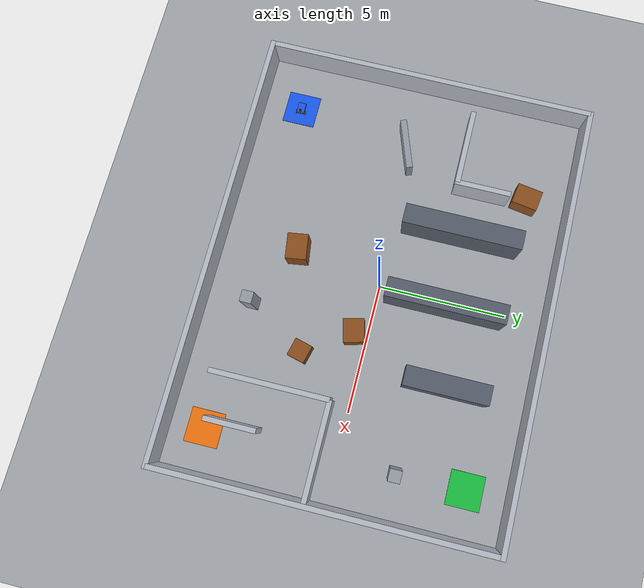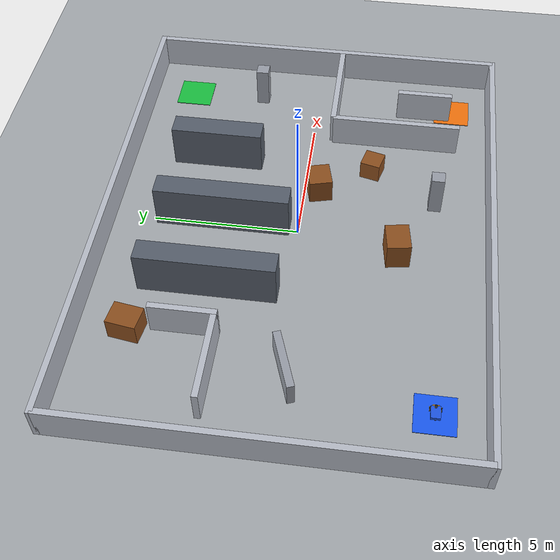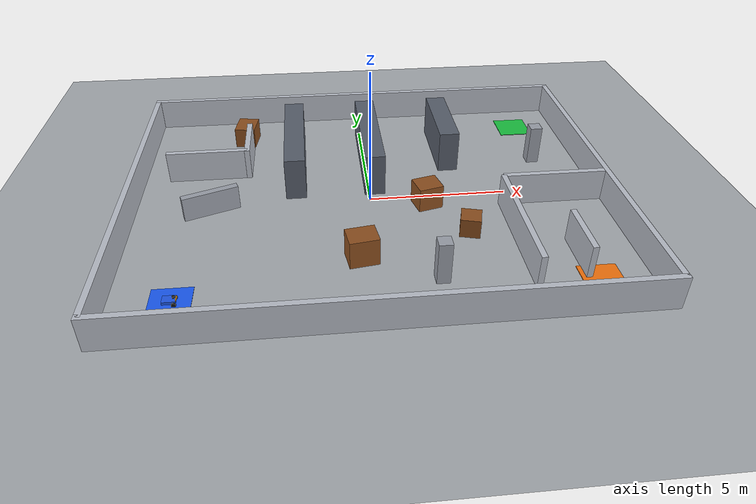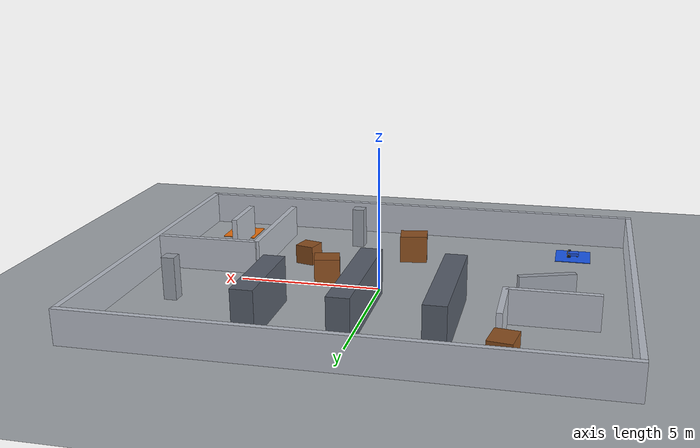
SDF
<?xml version="1.0"?>
<sdf version="1.9">
  <world name="rse_warehouse">
    <physics name="default_physics" type="dart">
      <max_step_size>0.001</max_step_size>
      <real_time_factor>1.0</real_time_factor>
    </physics>

    <plugin filename="gz-sim-physics-system" name="gz::sim::systems::Physics"/>
    <plugin filename="gz-sim-user-commands-system" name="gz::sim::systems::UserCommands"/>
    <plugin filename="gz-sim-scene-broadcaster-system" name="gz::sim::systems::SceneBroadcaster"/>
    <plugin filename="gz-sim-sensors-system" name="gz::sim::systems::Sensors">
      <render_engine>ogre2</render_engine>
    </plugin>

    <scene>
      <ambient>0.55 0.55 0.55 1</ambient>
      <background>0.82 0.88 0.94 1</background>
      <shadows>true</shadows>
    </scene>

    <light name="sun" type="directional">
      <cast_shadows>true</cast_shadows>
      <pose>0 0 10 0 0 0</pose>
      <diffuse>0.9 0.9 0.9 1</diffuse>
      <specular>0.2 0.2 0.2 1</specular>
      <attenuation><range>1000</range><constant>0.9</constant><linear>0.01</linear><quadratic>0.001</quadratic></attenuation>
      <direction>-0.4 0.2 -0.9</direction>
    </light>

    <model name="ground_plane">
      <static>true</static>
      <link name="ground_link">
        <collision name="ground_collision"><geometry><plane><normal>0 0 1</normal><size>18 14</size></plane></geometry></collision>
        <visual name="ground_visual">
          <geometry><plane><normal>0 0 1</normal><size>18 14</size></plane></geometry>
          <material><ambient>0.58 0.60 0.62 1</ambient><diffuse>0.64 0.66 0.68 1</diffuse></material>
        </visual>
      </link>
    </model>

    <model name="warehouse_obstacles">
      <static>true</static>
    <link name="wall_north">
      <pose>0 6.5 0.6 0 0 0</pose>
      <collision name="wall_north_collision">
        <geometry><box><size>17.2 0.20 1.2</size></box></geometry>
      </collision>
      <visual name="wall_north_visual">
        <geometry><box><size>17.2 0.20 1.2</size></box></geometry>
        <material><ambient>0.72 0.74 0.78 1</ambient><diffuse>0.72 0.74 0.78 1</diffuse></material>
      </visual>
    </link>
    <link name="wall_south">
      <pose>0 -6.5 0.6 0 0 0</pose>
      <collision name="wall_south_collision">
        <geometry><box><size>17.2 0.20 1.2</size></box></geometry>
      </collision>
      <visual name="wall_south_visual">
        <geometry><box><size>17.2 0.20 1.2</size></box></geometry>
        <material><ambient>0.72 0.74 0.78 1</ambient><diffuse>0.72 0.74 0.78 1</diffuse></material>
      </visual>
    </link>
    <link name="wall_east">
      <pose>8.5 0 0.6 0 0 0</pose>
      <collision name="wall_east_collision">
        <geometry><box><size>0.20 13.0 1.2</size></box></geometry>
      </collision>
      <visual name="wall_east_visual">
        <geometry><box><size>0.20 13.0 1.2</size></box></geometry>
        <material><ambient>0.72 0.74 0.78 1</ambient><diffuse>0.72 0.74 0.78 1</diffuse></material>
      </visual>
    </link>
    <link name="wall_west">
      <pose>-8.5 0 0.6 0 0 0</pose>
      <collision name="wall_west_collision">
        <geometry><box><size>0.20 13.0 1.2</size></box></geometry>
      </collision>
      <visual name="wall_west_visual">
        <geometry><box><size>0.20 13.0 1.2</size></box></geometry>
        <material><ambient>0.72 0.74 0.78 1</ambient><diffuse>0.72 0.74 0.78 1</diffuse></material>
      </visual>
    </link>
    <link name="shelf_west_1">
      <pose>-2.7 2.6 0.8 0 0 0</pose>
      <collision name="shelf_west_1_collision">
        <geometry><box><size>0.75 4.6 1.6</size></box></geometry>
      </collision>
      <visual name="shelf_west_1_visual">
        <geometry><box><size>0.75 4.6 1.6</size></box></geometry>
        <material><ambient>0.34 0.37 0.42 1</ambient><diffuse>0.34 0.37 0.42 1</diffuse></material>
      </visual>
    </link>
    <link name="shelf_center_1">
      <pose>0.2 2.6 0.8 0 0 0</pose>
      <collision name="shelf_center_1_collision">
        <geometry><box><size>0.75 4.6 1.6</size></box></geometry>
      </collision>
      <visual name="shelf_center_1_visual">
        <geometry><box><size>0.75 4.6 1.6</size></box></geometry>
        <material><ambient>0.34 0.37 0.42 1</ambient><diffuse>0.34 0.37 0.42 1</diffuse></material>
      </visual>
    </link>
    <link name="shelf_east_1">
      <pose>3.2 3.3 0.8 0 0 0</pose>
      <collision name="shelf_east_1_collision">
        <geometry><box><size>0.75 3.2 1.6</size></box></geometry>
      </collision>
      <visual name="shelf_east_1_visual">
        <geometry><box><size>0.75 3.2 1.6</size></box></geometry>
        <material><ambient>0.34 0.37 0.42 1</ambient><diffuse>0.34 0.37 0.42 1</diffuse></material>
      </visual>
    </link>
    <link name="room_wall_west">
      <pose>4.7 -3.0 0.6 0 0 0</pose>
      <collision name="room_wall_west_collision">
        <geometry><box><size>0.20 4.6 1.2</size></box></geometry>
      </collision>
      <visual name="room_wall_west_visual">
        <geometry><box><size>0.20 4.6 1.2</size></box></geometry>
        <material><ambient>0.72 0.74 0.78 1</ambient><diffuse>0.72 0.74 0.78 1</diffuse></material>
      </visual>
    </link>
    <link name="room_wall_north">
      <pose>6.55 -0.7 0.6 0 0 0</pose>
      <collision name="room_wall_north_collision">
        <geometry><box><size>3.7 0.20 1.2</size></box></geometry>
      </collision>
      <visual name="room_wall_north_visual">
        <geometry><box><size>3.7 0.20 1.2</size></box></geometry>
        <material><ambient>0.72 0.74 0.78 1</ambient><diffuse>0.72 0.74 0.78 1</diffuse></material>
      </visual>
    </link>
    <link name="room_wall_inner">
      <pose>6.4 -4.0 0.6 0 0 0</pose>
      <collision name="room_wall_inner_collision">
        <geometry><box><size>0.20 2.0 1.2</size></box></geometry>
      </collision>
      <visual name="room_wall_inner_visual">
        <geometry><box><size>0.20 2.0 1.2</size></box></geometry>
        <material><ambient>0.72 0.74 0.78 1</ambient><diffuse>0.72 0.74 0.78 1</diffuse></material>
      </visual>
    </link>
    <link name="dead_end_back">
      <pose>-6.0 2.0 0.6 0 0 0</pose>
      <collision name="dead_end_back_collision">
        <geometry><box><size>3.0 0.20 1.2</size></box></geometry>
      </collision>
      <visual name="dead_end_back_visual">
        <geometry><box><size>3.0 0.20 1.2</size></box></geometry>
        <material><ambient>0.72 0.74 0.78 1</ambient><diffuse>0.72 0.74 0.78 1</diffuse></material>
      </visual>
    </link>
    <link name="dead_end_side">
      <pose>-4.5 3.0 0.6 0 0 0</pose>
      <collision name="dead_end_side_collision">
        <geometry><box><size>0.20 2.2 1.2</size></box></geometry>
      </collision>
      <visual name="dead_end_side_visual">
        <geometry><box><size>0.20 2.2 1.2</size></box></geometry>
        <material><ambient>0.72 0.74 0.78 1</ambient><diffuse>0.72 0.74 0.78 1</diffuse></material>
      </visual>
    </link>
    <link name="low_occluder">
      <pose>-5.7 -0.3 0.45 0 0 0.35</pose>
      <collision name="low_occluder_collision">
        <geometry><box><size>2.0 0.25 0.9</size></box></geometry>
      </collision>
      <visual name="low_occluder_visual">
        <geometry><box><size>2.0 0.25 0.9</size></box></geometry>
        <material><ambient>0.60 0.62 0.66 1</ambient><diffuse>0.60 0.62 0.66 1</diffuse></material>
      </visual>
    </link>
    <link name="crate_1">
      <pose>2.0 -0.5 0.45 0 0 0.25</pose>
      <collision name="crate_1_collision">
        <geometry><box><size>0.9 0.8 0.9</size></box></geometry>
      </collision>
      <visual name="crate_1_visual">
        <geometry><box><size>0.9 0.8 0.9</size></box></geometry>
        <material><ambient>0.55 0.31 0.12 1</ambient><diffuse>0.55 0.31 0.12 1</diffuse></material>
      </visual>
    </link>
    <link name="crate_2">
      <pose>3.2 -2.3 0.35 0 0 -0.25</pose>
      <collision name="crate_2_collision">
        <geometry><box><size>0.7 0.7 0.7</size></box></geometry>
      </collision>
      <visual name="crate_2_visual">
        <geometry><box><size>0.7 0.7 0.7</size></box></geometry>
        <material><ambient>0.55 0.31 0.12 1</ambient><diffuse>0.55 0.31 0.12 1</diffuse></material>
      </visual>
    </link>
    <link name="crate_3">
      <pose>-0.6 -3.4 0.50 0 0 0.15</pose>
      <collision name="crate_3_collision">
        <geometry><box><size>1.0 0.8 1.0</size></box></geometry>
      </collision>
      <visual name="crate_3_visual">
        <geometry><box><size>1.0 0.8 1.0</size></box></geometry>
        <material><ambient>0.55 0.31 0.12 1</ambient><diffuse>0.55 0.31 0.12 1</diffuse></material>
      </visual>
    </link>
    <link name="crate_4">
      <pose>-4.7 4.8 0.40 0 0 -0.15</pose>
      <collision name="crate_4_collision">
        <geometry><box><size>0.8 1.0 0.8</size></box></geometry>
      </collision>
      <visual name="crate_4_visual">
        <geometry><box><size>0.8 1.0 0.8</size></box></geometry>
        <material><ambient>0.55 0.31 0.12 1</ambient><diffuse>0.55 0.31 0.12 1</diffuse></material>
      </visual>
    </link>
    <link name="pillar_1">
      <pose>1.8 -4.6 0.75 0 0 0</pose>
      <collision name="pillar_1_collision">
        <geometry><box><size>0.45 0.45 1.5</size></box></geometry>
      </collision>
      <visual name="pillar_1_visual">
        <geometry><box><size>0.45 0.45 1.5</size></box></geometry>
        <material><ambient>0.60 0.62 0.66 1</ambient><diffuse>0.60 0.62 0.66 1</diffuse></material>
      </visual>
    </link>
    <link name="pillar_2">
      <pose>6.7 2.2 0.75 0 0 0</pose>
      <collision name="pillar_2_collision">
        <geometry><box><size>0.45 0.45 1.5</size></box></geometry>
      </collision>
      <visual name="pillar_2_visual">
        <geometry><box><size>0.45 0.45 1.5</size></box></geometry>
        <material><ambient>0.60 0.62 0.66 1</ambient><diffuse>0.60 0.62 0.66 1</diffuse></material>
      </visual>
    </link>
    </model>

    <model name="station_pads">
      <static>true</static>
    <link name="home_pad">
      <pose>-6.5 -4.9 0.012 0 0 0</pose>
      <visual name="home_pad_visual">
        <geometry><box><size>1.3 1.3 0.024</size></box></geometry>
        <material><ambient>0.10 0.35 0.95 1</ambient><diffuse>0.10 0.35 0.95 1</diffuse></material>
      </visual>
    </link>
    <link name="station_a_pad">
      <pose>6.7 4.9 0.012 0 0 0</pose>
      <visual name="station_a_pad_visual">
        <geometry><box><size>1.3 1.3 0.024</size></box></geometry>
        <material><ambient>0.10 0.75 0.25 1</ambient><diffuse>0.10 0.75 0.25 1</diffuse></material>
      </visual>
    </link>
    <link name="station_b_pad">
      <pose>6.8 -5.1 0.012 0 0 0</pose>
      <visual name="station_b_pad_visual">
        <geometry><box><size>1.3 1.3 0.024</size></box></geometry>
        <material><ambient>0.95 0.45 0.05 1</ambient><diffuse>0.95 0.45 0.05 1</diffuse></material>
      </visual>
    </link>
    </model>

    <include>
      <uri>model://rse_bot</uri>
      <name>rse_bot</name>
      <pose>-6.5 -4.9 0 0 0 0</pose>
    </include>
  </world>
</sdf>

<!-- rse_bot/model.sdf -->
<sdf version="1.9">
  <model name="rse_bot" canonical_link="base_link">
    <static>false</static>
    <self_collide>false</self_collide>

    <link name="base_link">
      <pose>0 0 0.14 0 0 0</pose>
      <inertial>
        <mass>7.0</mass>
        <inertia>
          <ixx>0.065</ixx><ixy>0</ixy><ixz>0</ixz>
          <iyy>0.105</iyy><iyz>0</iyz><izz>0.145</izz>
        </inertia>
      </inertial>
      <collision name="base_collision">
        <geometry><box><size>0.42 0.30 0.10</size></box></geometry>
      </collision>
      <visual name="base_visual">
        <geometry><box><size>0.42 0.30 0.10</size></box></geometry>
        <material>
          <ambient>0.10 0.28 0.72 1</ambient>
          <diffuse>0.12 0.34 0.90 1</diffuse>
          <specular>0.15 0.15 0.15 1</specular>
        </material>
      </visual>
      <!-- Bright wedge-like front marker: the robot's +X direction. -->
      <visual name="front_marker">
        <pose>0.215 0 0.035 0 0 0</pose>
        <geometry><box><size>0.03 0.20 0.045</size></box></geometry>
        <material>
          <ambient>1.0 0.55 0.02 1</ambient>
          <diffuse>1.0 0.62 0.02 1</diffuse>
        </material>
      </visual>
    </link>

    <link name="left_wheel_link">
      <pose>0.15 0.17 0.075 -1.57079632679 0 0</pose>
      <inertial>
        <mass>0.45</mass>
        <inertia>
          <ixx>0.0014</ixx><ixy>0</ixy><ixz>0</ixz>
          <iyy>0.0008</iyy><iyz>0</iyz><izz>0.0014</izz>
        </inertia>
      </inertial>
      <collision name="left_wheel_collision">
        <geometry><cylinder><radius>0.075</radius><length>0.04</length></cylinder></geometry>
        <surface><friction><ode><mu>1.2</mu><mu2>1.2</mu2></ode></friction></surface>
      </collision>
      <visual name="left_wheel_visual">
        <geometry><cylinder><radius>0.075</radius><length>0.04</length></cylinder></geometry>
        <material><ambient>0.04 0.04 0.04 1</ambient><diffuse>0.08 0.08 0.08 1</diffuse></material>
      </visual>
    </link>

    <link name="right_wheel_link">
      <pose>0.15 -0.17 0.075 -1.57079632679 0 0</pose>
      <inertial>
        <mass>0.45</mass>
        <inertia>
          <ixx>0.0014</ixx><ixy>0</ixy><ixz>0</ixz>
          <iyy>0.0008</iyy><iyz>0</iyz><izz>0.0014</izz>
        </inertia>
      </inertial>
      <collision name="right_wheel_collision">
        <geometry><cylinder><radius>0.075</radius><length>0.04</length></cylinder></geometry>
        <surface><friction><ode><mu>1.2</mu><mu2>1.2</mu2></ode></friction></surface>
      </collision>
      <visual name="right_wheel_visual">
        <geometry><cylinder><radius>0.075</radius><length>0.04</length></cylinder></geometry>
        <material><ambient>0.04 0.04 0.04 1</ambient><diffuse>0.08 0.08 0.08 1</diffuse></material>
      </visual>
    </link>

    <link name="caster_link">
      <pose>-0.16 0 0.035 0 0 0</pose>
      <inertial>
        <mass>0.15</mass>
        <inertia>
          <ixx>0.00008</ixx><ixy>0</ixy><ixz>0</ixz>
          <iyy>0.00008</iyy><iyz>0</iyz><izz>0.00008</izz>
        </inertia>
      </inertial>
      <collision name="caster_collision">
        <geometry><sphere><radius>0.035</radius></sphere></geometry>
        <surface><friction><ode><mu>0.001</mu><mu2>0.001</mu2></ode></friction></surface>
      </collision>
      <visual name="caster_visual">
        <geometry><sphere><radius>0.035</radius></sphere></geometry>
        <material><ambient>0.35 0.35 0.35 1</ambient><diffuse>0.45 0.45 0.45 1</diffuse></material>
      </visual>
    </link>

    <link name="lidar_link">
      <pose>0.15 0 0.25 0 0 0</pose>
      <inertial>
        <mass>0.12</mass>
        <inertia>
          <ixx>0.0001</ixx><ixy>0</ixy><ixz>0</ixz>
          <iyy>0.0001</iyy><iyz>0</iyz><izz>0.0001</izz>
        </inertia>
      </inertial>
      <visual name="lidar_visual">
        <geometry><cylinder><radius>0.045</radius><length>0.055</length></cylinder></geometry>
        <material><ambient>0.08 0.08 0.08 1</ambient><diffuse>0.12 0.12 0.12 1</diffuse></material>
      </visual>
      <sensor name="planar_lidar" type="gpu_lidar">
        <topic>/scan</topic>
        <update_rate>10</update_rate>
        <always_on>true</always_on>
        <visualize>true</visualize>
        <ray>
          <scan>
            <horizontal>
              <samples>541</samples>
              <resolution>1</resolution>
              <min_angle>-2.35619449</min_angle>
              <max_angle>2.35619449</max_angle>
            </horizontal>
            <vertical>
              <samples>1</samples>
              <resolution>1</resolution>
              <min_angle>0</min_angle>
              <max_angle>0</max_angle>
            </vertical>
          </scan>
          <range>
            <min>0.10</min>
            <max>10.0</max>
            <resolution>0.01</resolution>
          </range>
          <noise>
            <type>gaussian</type>
            <mean>0.0</mean>
            <stddev>0.005</stddev>
          </noise>
        </ray>
      </sensor>
    </link>

    <joint name="left_wheel_joint" type="revolute">
      <parent>base_link</parent>
      <child>left_wheel_link</child>
      <pose relative_to="left_wheel_link">0 0 0 0 0 0</pose>
      <axis>
        <xyz expressed_in="__model__">0 1 0</xyz>
        <limit><lower>-1.0e16</lower><upper>1.0e16</upper><effort>20</effort><velocity>20</velocity></limit>
      </axis>
    </joint>

    <joint name="right_wheel_joint" type="revolute">
      <parent>base_link</parent>
      <child>right_wheel_link</child>
      <pose relative_to="right_wheel_link">0 0 0 0 0 0</pose>
      <axis>
        <xyz expressed_in="__model__">0 1 0</xyz>
        <limit><lower>-1.0e16</lower><upper>1.0e16</upper><effort>20</effort><velocity>20</velocity></limit>
      </axis>
    </joint>

    <joint name="caster_joint" type="fixed">
      <parent>base_link</parent>
      <child>caster_link</child>
    </joint>

    <joint name="lidar_joint" type="fixed">
      <parent>base_link</parent>
      <child>lidar_link</child>
    </joint>

    <plugin filename="gz-sim-diff-drive-system" name="gz::sim::systems::DiffDrive">
      <left_joint>left_wheel_joint</left_joint>
      <right_joint>right_wheel_joint</right_joint>
      <wheel_separation>0.34</wheel_separation>
      <wheel_radius>0.075</wheel_radius>
      <topic>/cmd_vel</topic>
      <odom_topic>/odom</odom_topic>
      <tf_topic>/tf</tf_topic>
      <frame_id>odom</frame_id>
      <child_frame_id>base_link</child_frame_id>
      <odom_publish_frequency>50</odom_publish_frequency>
      <max_linear_velocity>0.8</max_linear_velocity>
      <min_linear_velocity>-0.5</min_linear_velocity>
      <max_angular_velocity>2.0</max_angular_velocity>
      <min_angular_velocity>-2.0</min_angular_velocity>
      <max_linear_acceleration>1.5</max_linear_acceleration>
      <max_angular_acceleration>4.0</max_angular_acceleration>
    </plugin>

    <plugin filename="gz-sim-joint-state-publisher-system" name="gz::sim::systems::JointStatePublisher">
      <topic>/joint_states</topic>
      <joint_name>left_wheel_joint</joint_name>
      <joint_name>right_wheel_joint</joint_name>
    </plugin>
  </model>
</sdf>
